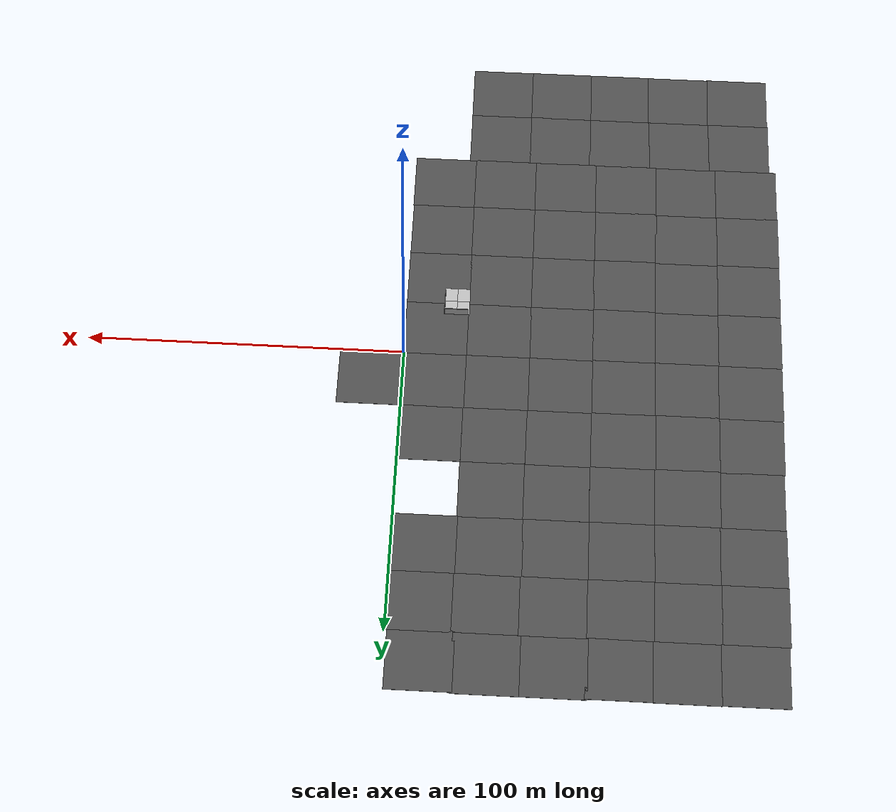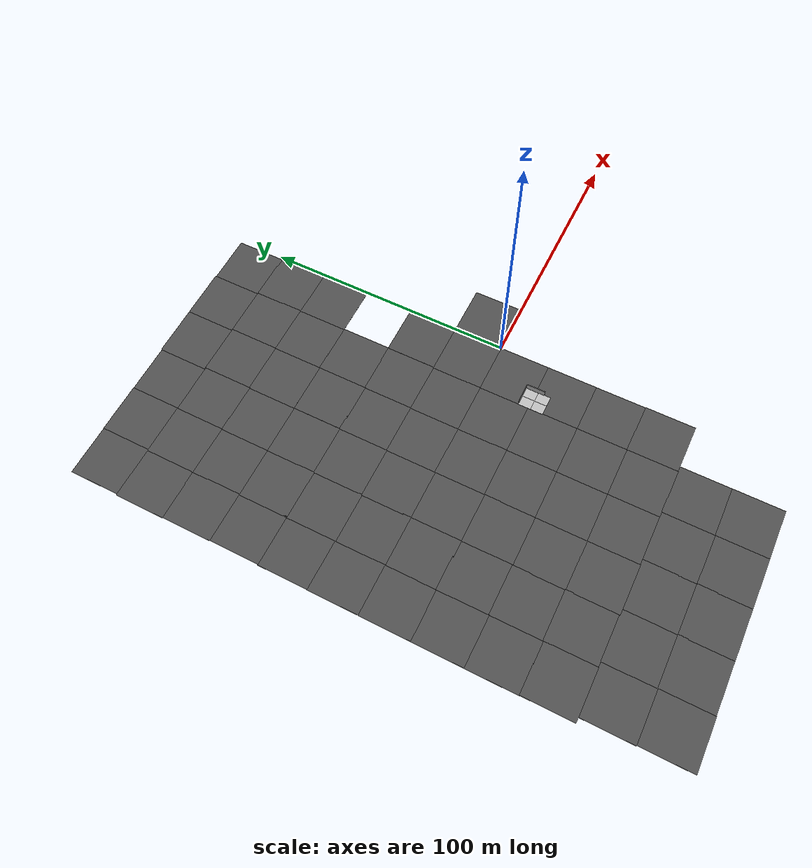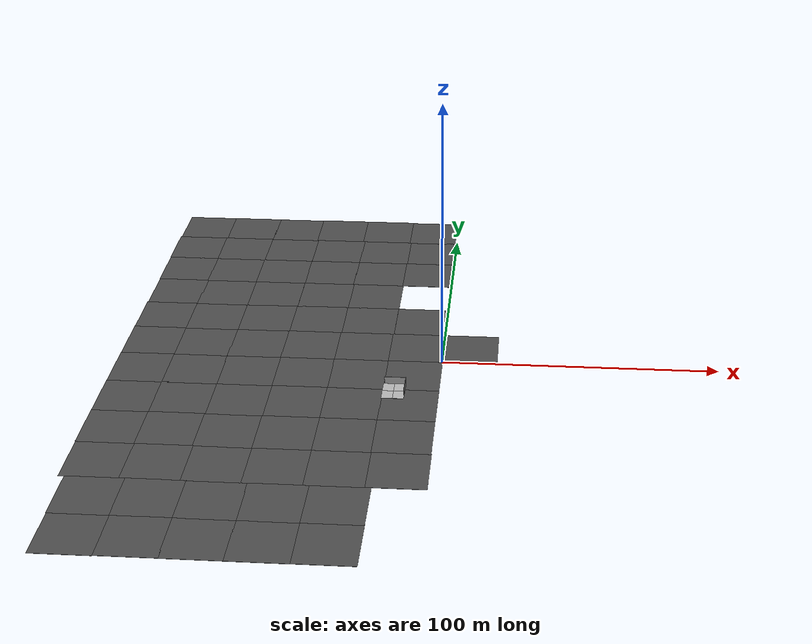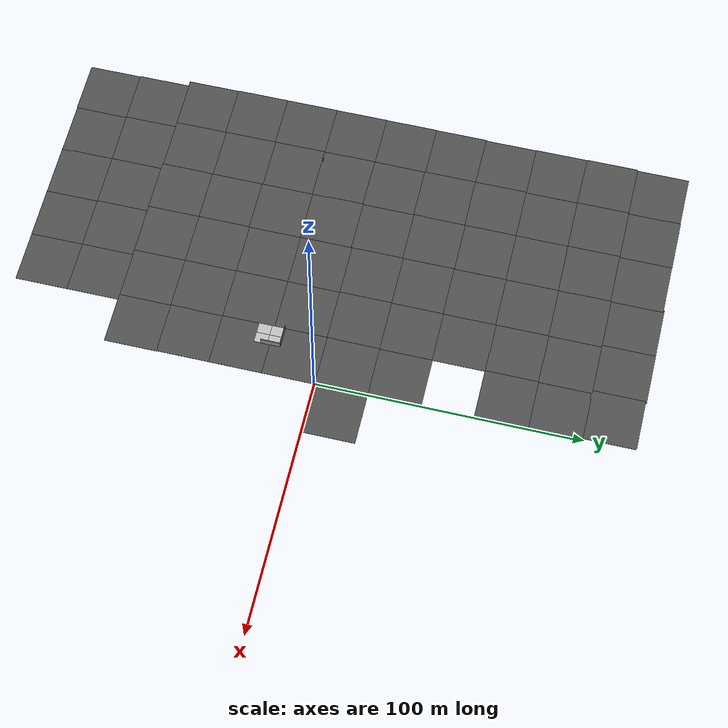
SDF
<sdf version="1.6">
 <world name="default">
  <model name="asphalt_plane">
   <static>1</static>
   <link name="link">
    <collision name="collision"><geometry><box><size>20 20 0.1</size></box></geometry></collision>
    <visual name="visual">
     <cast_shadows>0</cast_shadows>
     <geometry><box><size>20 20 0.1</size></box></geometry>
     <material>
      <script>
       <uri>model://asphalt_plane/materials/scripts</uri>
       <uri>model://asphalt_plane/materials/textures</uri>
       <name>vrc/asphalt</name>
      </script>
     </material>
    </visual>
    <velocity_decay><linear>0</linear><angular>0</angular></velocity_decay>
   </link>
   <pose>10 10 0 0 -0 0</pose>
  </model>
  <model name="asphalt_plane_1">
   <static>1</static>
   <link name="link">
    <collision name="collision"><geometry><box><size>20 20 0.1</size></box></geometry></collision>
    <visual name="visual">
     <cast_shadows>0</cast_shadows>
     <geometry><box><size>20 20 0.1</size></box></geometry>
     <material>
      <script>
       <uri>model://asphalt_plane/materials/scripts</uri>
       <uri>model://asphalt_plane/materials/textures</uri>
       <name>vrc/asphalt</name>
      </script>
     </material>
    </visual>
    <velocity_decay><linear>0</linear><angular>0</angular></velocity_decay>
   </link>
   <pose>-10 10 0 0 -0 0</pose>
  </model>
  <model name="asphalt_plane_2">
   <static>1</static>
   <link name="link">
    <collision name="collision"><geometry><box><size>20 20 0.1</size></box></geometry></collision>
    <visual name="visual">
     <cast_shadows>0</cast_shadows>
     <geometry><box><size>20 20 0.1</size></box></geometry>
     <material>
      <script>
       <uri>model://asphalt_plane/materials/scripts</uri>
       <uri>model://asphalt_plane/materials/textures</uri>
       <name>vrc/asphalt</name>
      </script>
     </material>
    </visual>
    <velocity_decay><linear>0</linear><angular>0</angular></velocity_decay>
   </link>
   <pose>-10 -10 0 0 -0 0</pose>
  </model>
  <model name="asphalt_plane_3">
   <static>1</static>
   <link name="link">
    <collision name="collision"><geometry><box><size>20 20 0.1</size></box></geometry></collision>
    <visual name="visual">
     <cast_shadows>0</cast_shadows>
     <geometry><box><size>20 20 0.1</size></box></geometry>
     <material>
      <script>
       <uri>model://asphalt_plane/materials/scripts</uri>
       <uri>model://asphalt_plane/materials/textures</uri>
       <name>vrc/asphalt</name>
      </script>
     </material>
    </visual>
    <velocity_decay><linear>0</linear><angular>0</angular></velocity_decay>
   </link>
   <pose>-10 -30 0 0 -0 0</pose>
  </model>
  <model name="mud_box">
   <static>1</static>
   <link name="link">
    <collision name="collision"><geometry><box><size>8 10 0.2</size></box></geometry></collision>
    <visual name="visual_1">
     <pose>-2 2.5 0 0 -0 0</pose>
     <cast_shadows>0</cast_shadows>
     <geometry><box><size>4 5 0.2</size></box></geometry>
     <material>
      <script>
       <uri>model://mud_box/materials/scripts</uri>
       <uri>model://mud_box/materials/textures</uri>
       <name>vrc/mud</name>
      </script>
     </material>
    </visual>
    <visual name="visual_2">
     <pose>2 2.5 0 0 -0 0</pose>
     <cast_shadows>0</cast_shadows>
     <geometry><box><size>4 5 0.2</size></box></geometry>
     <material>
      <script>
       <uri>model://mud_box/materials/scripts</uri>
       <uri>model://mud_box/materials/textures</uri>
       <name>vrc/mud</name>
      </script>
     </material>
    </visual>
    <visual name="visual_3">
     <pose>2 -2.5 0 0 -0 0</pose>
     <cast_shadows>0</cast_shadows>
     <geometry><box><size>4 5 0.2</size></box></geometry>
     <material>
      <script>
       <uri>model://mud_box/materials/scripts</uri>
       <uri>model://mud_box/materials/textures</uri>
       <name>vrc/mud</name>
      </script>
     </material>
    </visual>
    <visual name="visual_4">
     <pose>-2 -2.5 0 0 -0 0</pose>
     <cast_shadows>0</cast_shadows>
     <geometry><box><size>4 5 0.2</size></box></geometry>
     <material>
      <script>
       <uri>model://mud_box/materials/scripts</uri>
       <uri>model://mud_box/materials/textures</uri>
       <name>vrc/mud</name>
      </script>
     </material>
    </visual>
    <velocity_decay><linear>0</linear><angular>0</angular></velocity_decay>
   </link>
   <pose>-16.1 -21 0 0 -0 0</pose>
  </model>
  <model name="grey_wall">
   <static>1</static>
   <link name="link">
    <pose>0 0 1.4 0 -0 0</pose>
    <collision name="collision"><geometry><box><size>7.5 0.2 2.8</size></box></geometry></collision>
    <visual name="visual">
     <cast_shadows>0</cast_shadows>
     <geometry><box><size>7.5 0.2 2.8</size></box></geometry>
     <material>
      <script>
       <uri>model://grey_wall/materials/scripts</uri>
       <uri>model://grey_wall/materials/textures</uri>
       <name>vrc/grey_wall</name>
      </script>
     </material>
    </visual>
    <velocity_decay><linear>0</linear><angular>0</angular></velocity_decay>
   </link>
   <pose>-16 -16 0 0 -0 0</pose>
  </model>
  <model name="grey_wall_0">
   <static>1</static>
   <link name="link">
    <pose>0 0 1.4 0 -0 0</pose>
    <collision name="collision"><geometry><box><size>7.5 0.2 2.8</size></box></geometry></collision>
    <visual name="visual">
     <cast_shadows>0</cast_shadows>
     <geometry><box><size>7.5 0.2 2.8</size></box></geometry>
     <material>
      <script>
       <uri>model://grey_wall/materials/scripts</uri>
       <uri>model://grey_wall/materials/textures</uri>
       <name>vrc/grey_wall</name>
      </script>
     </material>
    </visual>
    <velocity_decay><linear>0</linear><angular>0</angular></velocity_decay>
   </link>
   <pose>-12.15 -19.7 0 0 0 -1.57378</pose>
  </model>
  <model name="asphalt_plane_8">
   <static>1</static>
   <link name="link">
    <collision name="collision"><geometry><box><size>20 20 0.1</size></box></geometry></collision>
    <visual name="visual">
     <cast_shadows>0</cast_shadows>
     <geometry><box><size>20 20 0.1</size></box></geometry>
     <material>
      <script>
       <uri>model://asphalt_plane/materials/scripts</uri>
       <uri>model://asphalt_plane/materials/textures</uri>
       <name>vrc/asphalt</name>
      </script>
     </material>
    </visual>
   </link>
   <pose>-10.0262 -49.9694 0 0 -0 0</pose>
  </model>
  <model name="asphalt_plane_28">
   <static>1</static>
   <link name="link">
    <collision name="collision"><geometry><box><size>20 20 0.1</size></box></geometry></collision>
    <visual name="visual">
     <cast_shadows>0</cast_shadows>
     <geometry><box><size>20 20 0.1</size></box></geometry>
     <material>
      <script>
       <uri>model://asphalt_plane/materials/scripts</uri>
       <uri>model://asphalt_plane/materials/textures</uri>
       <name>vrc/asphalt</name>
      </script>
     </material>
    </visual>
   </link>
   <pose>-9.65035 29.8845 0 0 -0 0</pose>
  </model>
  <model name="asphalt_plane_29">
   <static>1</static>
   <link name="link">
    <collision name="collision"><geometry><box><size>20 20 0.1</size></box></geometry></collision>
    <visual name="visual">
     <cast_shadows>0</cast_shadows>
     <geometry><box><size>20 20 0.1</size></box></geometry>
     <material>
      <script>
       <uri>model://asphalt_plane/materials/scripts</uri>
       <uri>model://asphalt_plane/materials/textures</uri>
       <name>vrc/asphalt</name>
      </script>
     </material>
    </visual>
   </link>
   <pose>-29.6635 29.8636 0 0 -0 0</pose>
  </model>
  <model name="asphalt_plane_30">
   <static>1</static>
   <link name="link">
    <collision name="collision"><geometry><box><size>20 20 0.1</size></box></geometry></collision>
    <visual name="visual">
     <cast_shadows>0</cast_shadows>
     <geometry><box><size>20 20 0.1</size></box></geometry>
     <material>
      <script>
       <uri>model://asphalt_plane/materials/scripts</uri>
       <uri>model://asphalt_plane/materials/textures</uri>
       <name>vrc/asphalt</name>
      </script>
     </material>
    </visual>
   </link>
   <pose>-29.8719 9.89328 0 0 -0 0</pose>
  </model>
  <model name="asphalt_plane_31">
   <static>1</static>
   <link name="link">
    <collision name="collision"><geometry><box><size>20 20 0.1</size></box></geometry></collision>
    <visual name="visual">
     <cast_shadows>0</cast_shadows>
     <geometry><box><size>20 20 0.1</size></box></geometry>
     <material>
      <script>
       <uri>model://asphalt_plane/materials/scripts</uri>
       <uri>model://asphalt_plane/materials/textures</uri>
       <name>vrc/asphalt</name>
      </script>
     </material>
    </visual>
   </link>
   <pose>-29.9029 -10.0926 0 0 -0 0</pose>
  </model>
  <model name="asphalt_plane_32">
   <static>1</static>
   <link name="link">
    <collision name="collision"><geometry><box><size>20 20 0.1</size></box></geometry></collision>
    <visual name="visual">
     <cast_shadows>0</cast_shadows>
     <geometry><box><size>20 20 0.1</size></box></geometry>
     <material>
      <script>
       <uri>model://asphalt_plane/materials/scripts</uri>
       <uri>model://asphalt_plane/materials/textures</uri>
       <name>vrc/asphalt</name>
      </script>
     </material>
    </visual>
   </link>
   <pose>-29.8516 -30.0257 0 0 -0 0</pose>
  </model>
  <model name="asphalt_plane_33">
   <static>1</static>
   <link name="link">
    <collision name="collision"><geometry><box><size>20 20 0.1</size></box></geometry></collision>
    <visual name="visual">
     <cast_shadows>0</cast_shadows>
     <geometry><box><size>20 20 0.1</size></box></geometry>
     <material>
      <script>
       <uri>model://asphalt_plane/materials/scripts</uri>
       <uri>model://asphalt_plane/materials/textures</uri>
       <name>vrc/asphalt</name>
      </script>
     </material>
    </visual>
   </link>
   <pose>-29.8339 -50.017 0 0 -0 0</pose>
  </model>
  <model name="asphalt_plane_34">
   <static>1</static>
   <link name="link">
    <collision name="collision"><geometry><box><size>20 20 0.1</size></box></geometry></collision>
    <visual name="visual">
     <cast_shadows>0</cast_shadows>
     <geometry><box><size>20 20 0.1</size></box></geometry>
     <material>
      <script>
       <uri>model://asphalt_plane/materials/scripts</uri>
       <uri>model://asphalt_plane/materials/textures</uri>
       <name>vrc/asphalt</name>
      </script>
     </material>
    </visual>
   </link>
   <pose>-49.8045 -50.0177 0 0 -0 0</pose>
  </model>
  <model name="asphalt_plane_35">
   <static>1</static>
   <link name="link">
    <collision name="collision"><geometry><box><size>20 20 0.1</size></box></geometry></collision>
    <visual name="visual">
     <cast_shadows>0</cast_shadows>
     <geometry><box><size>20 20 0.1</size></box></geometry>
     <material>
      <script>
       <uri>model://asphalt_plane/materials/scripts</uri>
       <uri>model://asphalt_plane/materials/textures</uri>
       <name>vrc/asphalt</name>
      </script>
     </material>
    </visual>
   </link>
   <pose>-49.7739 -30.0396 0 0 -0 0</pose>
  </model>
  <model name="asphalt_plane_36">
   <static>1</static>
   <link name="link">
    <collision name="collision"><geometry><box><size>20 20 0.1</size></box></geometry></collision>
    <visual name="visual">
     <cast_shadows>0</cast_shadows>
     <geometry><box><size>20 20 0.1</size></box></geometry>
     <material>
      <script>
       <uri>model://asphalt_plane/materials/scripts</uri>
       <uri>model://asphalt_plane/materials/textures</uri>
       <name>vrc/asphalt</name>
      </script>
     </material>
    </visual>
   </link>
   <pose>-49.7315 -10.0641 0 0 -0 0</pose>
  </model>
  <model name="asphalt_plane_37">
   <static>1</static>
   <link name="link">
    <collision name="collision"><geometry><box><size>20 20 0.1</size></box></geometry></collision>
    <visual name="visual">
     <cast_shadows>0</cast_shadows>
     <geometry><box><size>20 20 0.1</size></box></geometry>
     <material>
      <script>
       <uri>model://asphalt_plane/materials/scripts</uri>
       <uri>model://asphalt_plane/materials/textures</uri>
       <name>vrc/asphalt</name>
      </script>
     </material>
    </visual>
   </link>
   <pose>-49.8526 9.81961 0 0 -0 0</pose>
  </model>
  <model name="asphalt_plane_38">
   <static>1</static>
   <link name="link">
    <collision name="collision"><geometry><box><size>20 20 0.1</size></box></geometry></collision>
    <visual name="visual">
     <cast_shadows>0</cast_shadows>
     <geometry><box><size>20 20 0.1</size></box></geometry>
     <material>
      <script>
       <uri>model://asphalt_plane/materials/scripts</uri>
       <uri>model://asphalt_plane/materials/textures</uri>
       <name>vrc/asphalt</name>
      </script>
     </material>
    </visual>
   </link>
   <pose>-49.5858 29.8157 0 0 -0 0</pose>
  </model>
  <model name="asphalt_plane_39">
   <static>1</static>
   <link name="link">
    <collision name="collision"><geometry><box><size>20 20 0.1</size></box></geometry></collision>
    <visual name="visual">
     <cast_shadows>0</cast_shadows>
     <geometry><box><size>20 20 0.1</size></box></geometry>
     <material>
      <script>
       <uri>model://asphalt_plane/materials/scripts</uri>
       <uri>model://asphalt_plane/materials/textures</uri>
       <name>vrc/asphalt</name>
      </script>
     </material>
    </visual>
   </link>
   <pose>-69.7888 -50.1931 0 0 -0 0</pose>
  </model>
  <model name="asphalt_plane_40">
   <static>1</static>
   <link name="link">
    <collision name="collision"><geometry><box><size>20 20 0.1</size></box></geometry></collision>
    <visual name="visual">
     <cast_shadows>0</cast_shadows>
     <geometry><box><size>20 20 0.1</size></box></geometry>
     <material>
      <script>
       <uri>model://asphalt_plane/materials/scripts</uri>
       <uri>model://asphalt_plane/materials/textures</uri>
       <name>vrc/asphalt</name>
      </script>
     </material>
    </visual>
   </link>
   <pose>-69.5889 -30.305 0 0 -0 0</pose>
  </model>
  <model name="asphalt_plane_41">
   <static>1</static>
   <link name="link">
    <collision name="collision"><geometry><box><size>20 20 0.1</size></box></geometry></collision>
    <visual name="visual">
     <cast_shadows>0</cast_shadows>
     <geometry><box><size>20 20 0.1</size></box></geometry>
     <material>
      <script>
       <uri>model://asphalt_plane/materials/scripts</uri>
       <uri>model://asphalt_plane/materials/textures</uri>
       <name>vrc/asphalt</name>
      </script>
     </material>
    </visual>
   </link>
   <pose>-69.6926 -10.3768 0 0 -0 0</pose>
  </model>
  <model name="asphalt_plane_42">
   <static>1</static>
   <link name="link">
    <collision name="collision"><geometry><box><size>20 20 0.1</size></box></geometry></collision>
    <visual name="visual">
     <cast_shadows>0</cast_shadows>
     <geometry><box><size>20 20 0.1</size></box></geometry>
     <material>
      <script>
       <uri>model://asphalt_plane/materials/scripts</uri>
       <uri>model://asphalt_plane/materials/textures</uri>
       <name>vrc/asphalt</name>
      </script>
     </material>
    </visual>
   </link>
   <pose>-69.7195 9.5907 0 0 -0 0</pose>
  </model>
  <model name="asphalt_plane_43">
   <static>1</static>
   <link name="link">
    <collision name="collision"><geometry><box><size>20 20 0.1</size></box></geometry></collision>
    <visual name="visual">
     <cast_shadows>0</cast_shadows>
     <geometry><box><size>20 20 0.1</size></box></geometry>
     <material>
      <script>
       <uri>model://asphalt_plane/materials/scripts</uri>
       <uri>model://asphalt_plane/materials/textures</uri>
       <name>vrc/asphalt</name>
      </script>
     </material>
    </visual>
   </link>
   <pose>-69.5806 29.5148 0 0 -0 0</pose>
  </model>
  <model name="asphalt_plane_44">
   <static>1</static>
   <link name="link">
    <collision name="collision"><geometry><box><size>20 20 0.1</size></box></geometry></collision>
    <visual name="visual">
     <cast_shadows>0</cast_shadows>
     <geometry><box><size>20 20 0.1</size></box></geometry>
     <material>
      <script>
       <uri>model://asphalt_plane/materials/scripts</uri>
       <uri>model://asphalt_plane/materials/textures</uri>
       <name>vrc/asphalt</name>
      </script>
     </material>
    </visual>
   </link>
   <pose>-69.4546 49.2496 0 0 -0 0</pose>
  </model>
  <model name="asphalt_plane_45">
   <static>1</static>
   <link name="link">
    <collision name="collision"><geometry><box><size>20 20 0.1</size></box></geometry></collision>
    <visual name="visual">
     <cast_shadows>0</cast_shadows>
     <geometry><box><size>20 20 0.1</size></box></geometry>
     <material>
      <script>
       <uri>model://asphalt_plane/materials/scripts</uri>
       <uri>model://asphalt_plane/materials/textures</uri>
       <name>vrc/asphalt</name>
      </script>
     </material>
    </visual>
   </link>
   <pose>-49.4459 49.3852 0 0 -0 0</pose>
  </model>
  <model name="asphalt_plane_46">
   <static>1</static>
   <link name="link">
    <collision name="collision"><geometry><box><size>20 20 0.1</size></box></geometry></collision>
    <visual name="visual">
     <cast_shadows>0</cast_shadows>
     <geometry><box><size>20 20 0.1</size></box></geometry>
     <material>
      <script>
       <uri>model://asphalt_plane/materials/scripts</uri>
       <uri>model://asphalt_plane/materials/textures</uri>
       <name>vrc/asphalt</name>
      </script>
     </material>
    </visual>
   </link>
   <pose>-29.5435 49.6651 0 0 -0 0</pose>
  </model>
  <model name="asphalt_plane_58">
   <static>1</static>
   <link name="link">
    <collision name="collision"><geometry><box><size>20 20 0.1</size></box></geometry></collision>
    <visual name="visual">
     <cast_shadows>0</cast_shadows>
     <geometry><box><size>20 20 0.1</size></box></geometry>
     <material>
      <script>
       <uri>model://asphalt_plane/materials/scripts</uri>
       <uri>model://asphalt_plane/materials/textures</uri>
       <name>vrc/asphalt</name>
      </script>
     </material>
    </visual>
   </link>
   <pose>-9.86457 69.4864 0 0 -0 0</pose>
  </model>
  <model name="asphalt_plane_59">
   <static>1</static>
   <link name="link">
    <collision name="collision"><geometry><box><size>20 20 0.1</size></box></geometry></collision>
    <visual name="visual">
     <cast_shadows>0</cast_shadows>
     <geometry><box><size>20 20 0.1</size></box></geometry>
     <material>
      <script>
       <uri>model://asphalt_plane/materials/scripts</uri>
       <uri>model://asphalt_plane/materials/textures</uri>
       <name>vrc/asphalt</name>
      </script>
     </material>
    </visual>
   </link>
   <pose>-29.8012 69.5131 0 0 -0 0</pose>
  </model>
  <model name="asphalt_plane_60">
   <static>1</static>
   <link name="link">
    <collision name="collision"><geometry><box><size>20 20 0.1</size></box></geometry></collision>
    <visual name="visual">
     <cast_shadows>0</cast_shadows>
     <geometry><box><size>20 20 0.1</size></box></geometry>
     <material>
      <script>
       <uri>model://asphalt_plane/materials/scripts</uri>
       <uri>model://asphalt_plane/materials/textures</uri>
       <name>vrc/asphalt</name>
      </script>
     </material>
    </visual>
   </link>
   <pose>-49.5215 69.3867 0 0 -0 0</pose>
  </model>
  <model name="asphalt_plane_61">
   <static>1</static>
   <link name="link">
    <collision name="collision"><geometry><box><size>20 20 0.1</size></box></geometry></collision>
    <visual name="visual">
     <cast_shadows>0</cast_shadows>
     <geometry><box><size>20 20 0.1</size></box></geometry>
     <material>
      <script>
       <uri>model://asphalt_plane/materials/scripts</uri>
       <uri>model://asphalt_plane/materials/textures</uri>
       <name>vrc/asphalt</name>
      </script>
     </material>
    </visual>
   </link>
   <pose>-69.39 69.2244 0 0 -0 0</pose>
  </model>
  <model name="asphalt_plane_67">
   <static>1</static>
   <link name="link">
    <collision name="collision"><geometry><box><size>20 20 0.1</size></box></geometry></collision>
    <visual name="visual">
     <cast_shadows>0</cast_shadows>
     <geometry><box><size>20 20 0.1</size></box></geometry>
     <material>
      <script>
       <uri>model://asphalt_plane/materials/scripts</uri>
       <uri>model://asphalt_plane/materials/textures</uri>
       <name>vrc/asphalt</name>
      </script>
     </material>
    </visual>
   </link>
   <pose>-9.8692 -69.8203 0 0 -0 0</pose>
  </model>
  <model name="asphalt_plane_68">
   <static>1</static>
   <link name="link">
    <collision name="collision"><geometry><box><size>20 20 0.1</size></box></geometry></collision>
    <visual name="visual">
     <cast_shadows>0</cast_shadows>
     <geometry><box><size>20 20 0.1</size></box></geometry>
     <material>
      <script>
       <uri>model://asphalt_plane/materials/scripts</uri>
       <uri>model://asphalt_plane/materials/textures</uri>
       <name>vrc/asphalt</name>
      </script>
     </material>
    </visual>
   </link>
   <pose>-29.8035 -69.9489 0 0 -0 0</pose>
  </model>
  <model name="asphalt_plane_69">
   <static>1</static>
   <link name="link">
    <collision name="collision"><geometry><box><size>20 20 0.1</size></box></geometry></collision>
    <visual name="visual">
     <cast_shadows>0</cast_shadows>
     <geometry><box><size>20 20 0.1</size></box></geometry>
     <material>
      <script>
       <uri>model://asphalt_plane/materials/scripts</uri>
       <uri>model://asphalt_plane/materials/textures</uri>
       <name>vrc/asphalt</name>
      </script>
     </material>
    </visual>
   </link>
   <pose>-49.75 -69.9837 0 0 -0 0</pose>
  </model>
  <model name="asphalt_plane_70">
   <static>1</static>
   <link name="link">
    <collision name="collision"><geometry><box><size>20 20 0.1</size></box></geometry></collision>
    <visual name="visual">
     <cast_shadows>0</cast_shadows>
     <geometry><box><size>20 20 0.1</size></box></geometry>
     <material>
      <script>
       <uri>model://asphalt_plane/materials/scripts</uri>
       <uri>model://asphalt_plane/materials/textures</uri>
       <name>vrc/asphalt</name>
      </script>
     </material>
    </visual>
   </link>
   <pose>-69.6983 -70.0528 0 0 -0 0</pose>
  </model>
  <model name="asphalt_plane_77">
   <static>1</static>
   <link name="link">
    <collision name="collision"><geometry><box><size>20 20 0.1</size></box></geometry></collision>
    <visual name="visual">
     <cast_shadows>0</cast_shadows>
     <geometry><box><size>20 20 0.1</size></box></geometry>
     <material>
      <script>
       <uri>model://asphalt_plane/materials/scripts</uri>
       <uri>model://asphalt_plane/materials/textures</uri>
       <name>vrc/asphalt</name>
      </script>
     </material>
    </visual>
   </link>
   <pose>-27.6998 -89.7486 0 0 -0 0</pose>
  </model>
  <model name="asphalt_plane_78">
   <static>1</static>
   <link name="link">
    <collision name="collision"><geometry><box><size>20 20 0.1</size></box></geometry></collision>
    <visual name="visual">
     <cast_shadows>0</cast_shadows>
     <geometry><box><size>20 20 0.1</size></box></geometry>
     <material>
      <script>
       <uri>model://asphalt_plane/materials/scripts</uri>
       <uri>model://asphalt_plane/materials/textures</uri>
       <name>vrc/asphalt</name>
      </script>
     </material>
    </visual>
   </link>
   <pose>-47.6509 -89.8741 0 0 -0 0</pose>
  </model>
  <model name="asphalt_plane_79">
   <static>1</static>
   <link name="link">
    <collision name="collision"><geometry><box><size>20 20 0.1</size></box></geometry></collision>
    <visual name="visual">
     <cast_shadows>0</cast_shadows>
     <geometry><box><size>20 20 0.1</size></box></geometry>
     <material>
      <script>
       <uri>model://asphalt_plane/materials/scripts</uri>
       <uri>model://asphalt_plane/materials/textures</uri>
       <name>vrc/asphalt</name>
      </script>
     </material>
    </visual>
   </link>
   <pose>-67.4324 -89.8653 0 0 -0 0</pose>
  </model>
  <model name="asphalt_plane_80">
   <static>1</static>
   <link name="link">
    <collision name="collision"><geometry><box><size>20 20 0.1</size></box></geometry></collision>
    <visual name="visual">
     <cast_shadows>0</cast_shadows>
     <geometry><box><size>20 20 0.1</size></box></geometry>
     <material>
      <script>
       <uri>model://asphalt_plane/materials/scripts</uri>
       <uri>model://asphalt_plane/materials/textures</uri>
       <name>vrc/asphalt</name>
      </script>
     </material>
    </visual>
   </link>
   <pose>-67.4035 -109.714 0 0 -0 0</pose>
  </model>
  <model name="asphalt_plane_81">
   <static>1</static>
   <link name="link">
    <collision name="collision"><geometry><box><size>20 20 0.1</size></box></geometry></collision>
    <visual name="visual">
     <cast_shadows>0</cast_shadows>
     <geometry><box><size>20 20 0.1</size></box></geometry>
     <material>
      <script>
       <uri>model://asphalt_plane/materials/scripts</uri>
       <uri>model://asphalt_plane/materials/textures</uri>
       <name>vrc/asphalt</name>
      </script>
     </material>
    </visual>
   </link>
   <pose>-47.6403 -109.725 0 0 -0 0</pose>
  </model>
  <model name="asphalt_plane_82">
   <static>1</static>
   <link name="link">
    <collision name="collision"><geometry><box><size>20 20 0.1</size></box></geometry></collision>
    <visual name="visual">
     <cast_shadows>0</cast_shadows>
     <geometry><box><size>20 20 0.1</size></box></geometry>
     <material>
      <script>
       <uri>model://asphalt_plane/materials/scripts</uri>
       <uri>model://asphalt_plane/materials/textures</uri>
       <name>vrc/asphalt</name>
      </script>
     </material>
    </visual>
   </link>
   <pose>-27.6614 -109.666 0 0 -0 0</pose>
  </model>
  <model name="asphalt_plane_89">
   <static>1</static>
   <link name="link">
    <collision name="collision"><geometry><box><size>20 20 0.1</size></box></geometry></collision>
    <visual name="visual">
     <cast_shadows>0</cast_shadows>
     <geometry><box><size>20 20 0.1</size></box></geometry>
     <material>
      <script>
       <uri>model://asphalt_plane/materials/scripts</uri>
       <uri>model://asphalt_plane/materials/textures</uri>
       <name>vrc/asphalt</name>
      </script>
     </material>
    </visual>
   </link>
   <pose>-89.1943 69.1242 0 0 -0 0</pose>
  </model>
  <model name="asphalt_plane_90">
   <static>1</static>
   <link name="link">
    <collision name="collision"><geometry><box><size>20 20 0.1</size></box></geometry></collision>
    <visual name="visual">
     <cast_shadows>0</cast_shadows>
     <geometry><box><size>20 20 0.1</size></box></geometry>
     <material>
      <script>
       <uri>model://asphalt_plane/materials/scripts</uri>
       <uri>model://asphalt_plane/materials/textures</uri>
       <name>vrc/asphalt</name>
      </script>
     </material>
    </visual>
   </link>
   <pose>-89.3006 49.1706 0 0 -0 0</pose>
  </model>
  <model name="asphalt_plane_91">
   <static>1</static>
   <link name="link">
    <collision name="collision"><geometry><box><size>20 20 0.1</size></box></geometry></collision>
    <visual name="visual">
     <cast_shadows>0</cast_shadows>
     <geometry><box><size>20 20 0.1</size></box></geometry>
     <material>
      <script>
       <uri>model://asphalt_plane/materials/scripts</uri>
       <uri>model://asphalt_plane/materials/textures</uri>
       <name>vrc/asphalt</name>
      </script>
     </material>
    </visual>
   </link>
   <pose>-89.3544 29.2868 0 0 -0 0</pose>
  </model>
  <model name="asphalt_plane_92">
   <static>1</static>
   <link name="link">
    <collision name="collision"><geometry><box><size>20 20 0.1</size></box></geometry></collision>
    <visual name="visual">
     <cast_shadows>0</cast_shadows>
     <geometry><box><size>20 20 0.1</size></box></geometry>
     <material>
      <script>
       <uri>model://asphalt_plane/materials/scripts</uri>
       <uri>model://asphalt_plane/materials/textures</uri>
       <name>vrc/asphalt</name>
      </script>
     </material>
    </visual>
   </link>
   <pose>-89.3973 9.40344 0 0 -0 0</pose>
  </model>
  <model name="asphalt_plane_93">
   <static>1</static>
   <link name="link">
    <collision name="collision"><geometry><box><size>20 20 0.1</size></box></geometry></collision>
    <visual name="visual">
     <cast_shadows>0</cast_shadows>
     <geometry><box><size>20 20 0.1</size></box></geometry>
     <material>
      <script>
       <uri>model://asphalt_plane/materials/scripts</uri>
       <uri>model://asphalt_plane/materials/textures</uri>
       <name>vrc/asphalt</name>
      </script>
     </material>
    </visual>
   </link>
   <pose>-89.467 -10.4714 0 0 -0 0</pose>
  </model>
  <model name="asphalt_plane_94">
   <static>1</static>
   <link name="link">
    <collision name="collision"><geometry><box><size>20 20 0.1</size></box></geometry></collision>
    <visual name="visual">
     <cast_shadows>0</cast_shadows>
     <geometry><box><size>20 20 0.1</size></box></geometry>
     <material>
      <script>
       <uri>model://asphalt_plane/materials/scripts</uri>
       <uri>model://asphalt_plane/materials/textures</uri>
       <name>vrc/asphalt</name>
      </script>
     </material>
    </visual>
   </link>
   <pose>-89.4992 -29.9838 0 0 -0 0</pose>
  </model>
  <model name="asphalt_plane_95">
   <static>1</static>
   <link name="link">
    <collision name="collision"><geometry><box><size>20 20 0.1</size></box></geometry></collision>
    <visual name="visual">
     <cast_shadows>0</cast_shadows>
     <geometry><box><size>20 20 0.1</size></box></geometry>
     <material>
      <script>
       <uri>model://asphalt_plane/materials/scripts</uri>
       <uri>model://asphalt_plane/materials/textures</uri>
       <name>vrc/asphalt</name>
      </script>
     </material>
    </visual>
   </link>
   <pose>-89.5292 -49.9616 0 0 -0 0</pose>
  </model>
  <model name="asphalt_plane_96">
   <static>1</static>
   <link name="link">
    <collision name="collision"><geometry><box><size>20 20 0.1</size></box></geometry></collision>
    <visual name="visual">
     <cast_shadows>0</cast_shadows>
     <geometry><box><size>20 20 0.1</size></box></geometry>
     <material>
      <script>
       <uri>model://asphalt_plane/materials/scripts</uri>
       <uri>model://asphalt_plane/materials/textures</uri>
       <name>vrc/asphalt</name>
      </script>
     </material>
    </visual>
   </link>
   <pose>-89.4341 -69.8526 0 0 -0 0</pose>
  </model>
  <model name="asphalt_plane_97">
   <static>1</static>
   <link name="link">
    <collision name="collision"><geometry><box><size>20 20 0.1</size></box></geometry></collision>
    <visual name="visual">
     <cast_shadows>0</cast_shadows>
     <geometry><box><size>20 20 0.1</size></box></geometry>
     <material>
      <script>
       <uri>model://asphalt_plane/materials/scripts</uri>
       <uri>model://asphalt_plane/materials/textures</uri>
       <name>vrc/asphalt</name>
      </script>
     </material>
    </visual>
   </link>
   <pose>-87.3626 -89.7427 0 0 -0 0</pose>
  </model>
  <model name="asphalt_plane_98">
   <static>1</static>
   <link name="link">
    <collision name="collision"><geometry><box><size>20 20 0.1</size></box></geometry></collision>
    <visual name="visual">
     <cast_shadows>0</cast_shadows>
     <geometry><box><size>20 20 0.1</size></box></geometry>
     <material>
      <script>
       <uri>model://asphalt_plane/materials/scripts</uri>
       <uri>model://asphalt_plane/materials/textures</uri>
       <name>vrc/asphalt</name>
      </script>
     </material>
    </visual>
   </link>
   <pose>-87.117 -109.668 0 0 -0 0</pose>
  </model>
  <model name="asphalt_plane_109">
   <static>1</static>
   <link name="link">
    <collision name="collision"><geometry><box><size>20 20 0.1</size></box></geometry></collision>
    <visual name="visual">
     <cast_shadows>0</cast_shadows>
     <geometry><box><size>20 20 0.1</size></box></geometry>
     <material>
      <script>
       <uri>model://asphalt_plane/materials/scripts</uri>
       <uri>model://asphalt_plane/materials/textures</uri>
       <name>vrc/asphalt</name>
      </script>
     </material>
    </visual>
   </link>
   <pose>-89.1865 89.0634 0 0 -0 0</pose>
  </model>
  <model name="asphalt_plane_110">
   <static>1</static>
   <link name="link">
    <collision name="collision"><geometry><box><size>20 20 0.1</size></box></geometry></collision>
    <visual name="visual">
     <cast_shadows>0</cast_shadows>
     <geometry><box><size>20 20 0.1</size></box></geometry>
     <material>
      <script>
       <uri>model://asphalt_plane/materials/scripts</uri>
       <uri>model://asphalt_plane/materials/textures</uri>
       <name>vrc/asphalt</name>
      </script>
     </material>
    </visual>
   </link>
   <pose>-69.2544 89.0441 0 0 -0 0</pose>
  </model>
  <model name="asphalt_plane_111">
   <static>1</static>
   <link name="link">
    <collision name="collision"><geometry><box><size>20 20 0.1</size></box></geometry></collision>
    <visual name="visual">
     <cast_shadows>0</cast_shadows>
     <geometry><box><size>20 20 0.1</size></box></geometry>
     <material>
      <script>
       <uri>model://asphalt_plane/materials/scripts</uri>
       <uri>model://asphalt_plane/materials/textures</uri>
       <name>vrc/asphalt</name>
      </script>
     </material>
    </visual>
   </link>
   <pose>-49.376 89.3525 0 0 -0 0</pose>
  </model>
  <model name="asphalt_plane_112">
   <static>1</static>
   <link name="link">
    <collision name="collision"><geometry><box><size>20 20 0.1</size></box></geometry></collision>
    <visual name="visual">
     <cast_shadows>0</cast_shadows>
     <geometry><box><size>20 20 0.1</size></box></geometry>
     <material>
      <script>
       <uri>model://asphalt_plane/materials/scripts</uri>
       <uri>model://asphalt_plane/materials/textures</uri>
       <name>vrc/asphalt</name>
      </script>
     </material>
    </visual>
   </link>
   <pose>-29.5902 89.3575 0 0 -0 0</pose>
  </model>
  <model name="asphalt_plane_113">
   <static>1</static>
   <link name="link">
    <collision name="collision"><geometry><box><size>20 20 0.1</size></box></geometry></collision>
    <visual name="visual">
     <cast_shadows>0</cast_shadows>
     <geometry><box><size>20 20 0.1</size></box></geometry>
     <material>
      <script>
       <uri>model://asphalt_plane/materials/scripts</uri>
       <uri>model://asphalt_plane/materials/textures</uri>
       <name>vrc/asphalt</name>
      </script>
     </material>
    </visual>
   </link>
   <pose>-9.80496 89.401 0 0 -0 0</pose>
  </model>
  <model name="asphalt_plane_120">
   <static>1</static>
   <link name="link">
    <collision name="collision"><geometry><box><size>20 20 0.1</size></box></geometry></collision>
    <visual name="visual">
     <cast_shadows>0</cast_shadows>
     <geometry><box><size>20 20 0.1</size></box></geometry>
     <material>
      <script>
       <uri>model://asphalt_plane/materials/scripts</uri>
       <uri>model://asphalt_plane/materials/textures</uri>
       <name>vrc/asphalt</name>
      </script>
     </material>
    </visual>
   </link>
   <pose>-109.105 88.9997 0 0 -0 0</pose>
  </model>
  <model name="asphalt_plane_121">
   <static>1</static>
   <link name="link">
    <collision name="collision"><geometry><box><size>20 20 0.1</size></box></geometry></collision>
    <visual name="visual">
     <cast_shadows>0</cast_shadows>
     <geometry><box><size>20 20 0.1</size></box></geometry>
     <material>
      <script>
       <uri>model://asphalt_plane/materials/scripts</uri>
       <uri>model://asphalt_plane/materials/textures</uri>
       <name>vrc/asphalt</name>
      </script>
     </material>
    </visual>
   </link>
   <pose>-108.964 69.188 0 0 -0 0</pose>
  </model>
  <model name="asphalt_plane_122">
   <static>1</static>
   <link name="link">
    <collision name="collision"><geometry><box><size>20 20 0.1</size></box></geometry></collision>
    <visual name="visual">
     <cast_shadows>0</cast_shadows>
     <geometry><box><size>20 20 0.1</size></box></geometry>
     <material>
      <script>
       <uri>model://asphalt_plane/materials/scripts</uri>
       <uri>model://asphalt_plane/materials/textures</uri>
       <name>vrc/asphalt</name>
      </script>
     </material>
    </visual>
   </link>
   <pose>-108.83 49.348 0 0 -0 0</pose>
  </model>
  <model name="asphalt_plane_123">
   <static>1</static>
   <link name="link">
    <collision name="collision"><geometry><box><size>20 20 0.1</size></box></geometry></collision>
    <visual name="visual">
     <cast_shadows>0</cast_shadows>
     <geometry><box><size>20 20 0.1</size></box></geometry>
     <material>
      <script>
       <uri>model://asphalt_plane/materials/scripts</uri>
       <uri>model://asphalt_plane/materials/textures</uri>
       <name>vrc/asphalt</name>
      </script>
     </material>
    </visual>
   </link>
   <pose>-109.142 29.5516 0 0 -0 0</pose>
  </model>
  <model name="asphalt_plane_124">
   <static>1</static>
   <link name="link">
    <collision name="collision"><geometry><box><size>20 20 0.1</size></box></geometry></collision>
    <visual name="visual">
     <cast_shadows>0</cast_shadows>
     <geometry><box><size>20 20 0.1</size></box></geometry>
     <material>
      <script>
       <uri>model://asphalt_plane/materials/scripts</uri>
       <uri>model://asphalt_plane/materials/textures</uri>
       <name>vrc/asphalt</name>
      </script>
     </material>
    </visual>
   </link>
   <pose>-109.275 9.60687 0 0 -0 0</pose>
  </model>
  <model name="asphalt_plane_125">
   <static>1</static>
   <link name="link">
    <collision name="collision"><geometry><box><size>20 20 0.1</size></box></geometry></collision>
    <visual name="visual">
     <cast_shadows>0</cast_shadows>
     <geometry><box><size>20 20 0.1</size></box></geometry>
     <material>
      <script>
       <uri>model://asphalt_plane/materials/scripts</uri>
       <uri>model://asphalt_plane/materials/textures</uri>
       <name>vrc/asphalt</name>
      </script>
     </material>
    </visual>
   </link>
   <pose>-109.367 -10.3675 0 0 -0 0</pose>
  </model>
  <model name="asphalt_plane_126">
   <static>1</static>
   <link name="link">
    <collision name="collision"><geometry><box><size>20 20 0.1</size></box></geometry></collision>
    <visual name="visual">
     <cast_shadows>0</cast_shadows>
     <geometry><box><size>20 20 0.1</size></box></geometry>
     <material>
      <script>
       <uri>model://asphalt_plane/materials/scripts</uri>
       <uri>model://asphalt_plane/materials/textures</uri>
       <name>vrc/asphalt</name>
      </script>
     </material>
    </visual>
   </link>
   <pose>-109.432 -30.2626 0 0 -0 0</pose>
  </model>
  <model name="asphalt_plane_127">
   <static>1</static>
   <link name="link">
    <collision name="collision"><geometry><box><size>20 20 0.1</size></box></geometry></collision>
    <visual name="visual">
     <cast_shadows>0</cast_shadows>
     <geometry><box><size>20 20 0.1</size></box></geometry>
     <material>
      <script>
       <uri>model://asphalt_plane/materials/scripts</uri>
       <uri>model://asphalt_plane/materials/textures</uri>
       <name>vrc/asphalt</name>
      </script>
     </material>
    </visual>
   </link>
   <pose>-109.476 -50.1902 0 0 -0 0</pose>
  </model>
  <model name="asphalt_plane_128">
   <static>1</static>
   <link name="link">
    <collision name="collision"><geometry><box><size>20 20 0.1</size></box></geometry></collision>
    <visual name="visual">
     <cast_shadows>0</cast_shadows>
     <geometry><box><size>20 20 0.1</size></box></geometry>
     <material>
      <script>
       <uri>model://asphalt_plane/materials/scripts</uri>
       <uri>model://asphalt_plane/materials/textures</uri>
       <name>vrc/asphalt</name>
      </script>
     </material>
    </visual>
   </link>
   <pose>-109.308 -69.9997 0 0 -0 0</pose>
  </model>
  <model name="asphalt_plane_129">
   <static>1</static>
   <link name="link">
    <collision name="collision"><geometry><box><size>20 20 0.1</size></box></geometry></collision>
    <visual name="visual">
     <cast_shadows>0</cast_shadows>
     <geometry><box><size>20 20 0.1</size></box></geometry>
     <material>
      <script>
       <uri>model://asphalt_plane/materials/scripts</uri>
       <uri>model://asphalt_plane/materials/textures</uri>
       <name>vrc/asphalt</name>
      </script>
     </material>
    </visual>
   </link>
   <pose>-107.255 -89.8535 0 0 -0 0</pose>
  </model>
  <model name="asphalt_plane_130">
   <static>1</static>
   <link name="link">
    <collision name="collision"><geometry><box><size>20 20 0.1</size></box></geometry></collision>
    <visual name="visual">
     <cast_shadows>0</cast_shadows>
     <geometry><box><size>20 20 0.1</size></box></geometry>
     <material>
      <script>
       <uri>model://asphalt_plane/materials/scripts</uri>
       <uri>model://asphalt_plane/materials/textures</uri>
       <name>vrc/asphalt</name>
      </script>
     </material>
    </visual>
   </link>
   <pose>-107.047 -109.817 0 0 -0 0</pose>
  </model>
  <model name="asphalt_plane_131">
   <static>1</static>
   <link name="link">
    <collision name="collision"><geometry><box><size>20 20 0.1</size></box></geometry></collision>
    <visual name="visual">
     <cast_shadows>0</cast_shadows>
     <geometry><box><size>20 20 0.1</size></box></geometry>
     <material>
      <script>
       <uri>model://asphalt_plane/materials/scripts</uri>
       <uri>model://asphalt_plane/materials/textures</uri>
       <name>vrc/asphalt</name>
      </script>
     </material>
    </visual>
   </link>
   <pose>-69.0767 108.95 0 0 -0 0</pose>
  </model>
  <model name="asphalt_plane_132">
   <static>1</static>
   <link name="link">
    <collision name="collision"><geometry><box><size>20 20 0.1</size></box></geometry></collision>
    <visual name="visual">
     <cast_shadows>0</cast_shadows>
     <geometry><box><size>20 20 0.1</size></box></geometry>
     <material>
      <script>
       <uri>model://asphalt_plane/materials/scripts</uri>
       <uri>model://asphalt_plane/materials/textures</uri>
       <name>vrc/asphalt</name>
      </script>
     </material>
    </visual>
   </link>
   <pose>-88.7944 109.04 0 0 -0 0</pose>
  </model>
  <model name="asphalt_plane_133">
   <static>1</static>
   <link name="link">
    <collision name="collision"><geometry><box><size>20 20 0.1</size></box></geometry></collision>
    <visual name="visual">
     <cast_shadows>0</cast_shadows>
     <geometry><box><size>20 20 0.1</size></box></geometry>
     <material>
      <script>
       <uri>model://asphalt_plane/materials/scripts</uri>
       <uri>model://asphalt_plane/materials/textures</uri>
       <name>vrc/asphalt</name>
      </script>
     </material>
    </visual>
   </link>
   <pose>-108.654 108.915 0 0 -0 0</pose>
  </model>
  <model name="asphalt_plane_134">
   <static>1</static>
   <link name="link">
    <collision name="collision"><geometry><box><size>20 20 0.1</size></box></geometry></collision>
    <visual name="visual">
     <cast_shadows>0</cast_shadows>
     <geometry><box><size>20 20 0.1</size></box></geometry>
     <material>
      <script>
       <uri>model://asphalt_plane/materials/scripts</uri>
       <uri>model://asphalt_plane/materials/textures</uri>
       <name>vrc/asphalt</name>
      </script>
     </material>
    </visual>
   </link>
   <pose>-49.908 109.284 0 0 -0 0</pose>
  </model>
  <model name="asphalt_plane_135">
   <static>1</static>
   <link name="link">
    <collision name="collision"><geometry><box><size>20 20 0.1</size></box></geometry></collision>
    <visual name="visual">
     <cast_shadows>0</cast_shadows>
     <geometry><box><size>20 20 0.1</size></box></geometry>
     <material>
      <script>
       <uri>model://asphalt_plane/materials/scripts</uri>
       <uri>model://asphalt_plane/materials/textures</uri>
       <name>vrc/asphalt</name>
      </script>
     </material>
    </visual>
   </link>
   <pose>-30.1769 109.315 0 0 -0 0</pose>
  </model>
  <model name="asphalt_plane_136">
   <static>1</static>
   <link name="link">
    <collision name="collision"><geometry><box><size>20 20 0.1</size></box></geometry></collision>
    <visual name="visual">
     <cast_shadows>0</cast_shadows>
     <geometry><box><size>20 20 0.1</size></box></geometry>
     <material>
      <script>
       <uri>model://asphalt_plane/materials/scripts</uri>
       <uri>model://asphalt_plane/materials/textures</uri>
       <name>vrc/asphalt</name>
      </script>
     </material>
    </visual>
   </link>
   <pose>-10.856 108.984 0 0 -0 0</pose>
  </model>
 </world>
</sdf>
